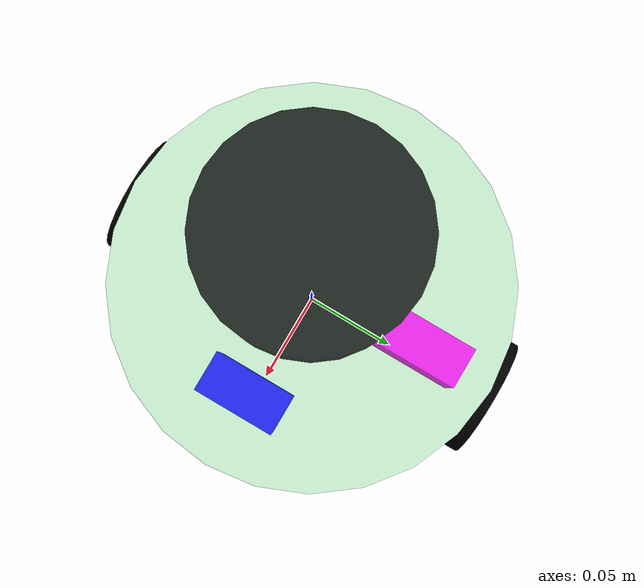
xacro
<!-- robot 根标签 -->
<robot name="car" xmlns:xacro="http://www.ros.org/wiki/xacro">
    <!-- 包含惯性矩阵 -->
    <xacro:include filename="$(find demo_gazebo_urdf)/urdf/head.urdf.xacro"/>
    <!-- 组合小车底盘、摄像头、深度相机、雷达 -->
    <xacro:include filename="$(find demo_gazebo_urdf)/urdf/carbase.urdf.xacro"/>
    <xacro:include filename="$(find demo_gazebo_urdf)/urdf/carcamera.urdf.xacro"/>
    <xacro:include filename="$(find demo_gazebo_urdf)/urdf/carkinectcamera.urdf.xacro"/>
    <xacro:include filename="$(find demo_gazebo_urdf)/urdf/carlaser.urdf.xacro"/>
    <!-- 为小车 joint 添加传动装置以及控制器 -->
    <xacro:include filename="$(find demo_gazebo_urdf)/urdf/gazebo/control.urdf.xacro"/>
    <!-- laser_sensor 配置信息 -->
    <xacro:include filename="$(find demo_gazebo_urdf)/urdf/gazebo/lasersensor.urdf.xacro"/>
    <!-- camera_sensor 配置信息 -->
    <xacro:include filename="$(find demo_gazebo_urdf)/urdf/gazebo/camerasensor.urdf.xacro"/>
    <!-- kinectcamera_sensor 配置信息 -->
    <xacro:include filename="$(find demo_gazebo_urdf)/urdf/gazebo/kinectcamerasensor.urdf.xacro"/>
</robot>

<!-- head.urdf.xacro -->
<robot name="base_inertial" xmlns:xacro="http://wiki.ros.org/xacro">
    <!-- Macro for inertia matrix -->
    <xacro:macro name="sphere_inertial_matrix" params="m r">
        <inertial>
            <mass value="${m}" />
            <inertia ixx="${2*m*r*r/5}" ixy="0" ixz="0"
                iyy="${2*m*r*r/5}" iyz="0"
                izz="${2*m*r*r/5}" />
        </inertial>
    </xacro:macro>

    <xacro:macro name="cylinder_inertial_matrix" params="m r h">
        <inertial>
            <mass value="${m}" />
            <inertia ixx="${m*(3*r*r+h*h)/12}" ixy = "0" ixz = "0"
                iyy="${m*(3*r*r+h*h)/12}" iyz = "0"
                izz="${m*r*r/2}" />
        </inertial>
    </xacro:macro>

    <xacro:macro name="Box_inertial_matrix" params="m l w h">
       <inertial>
               <mass value="${m}" />
               <inertia ixx="${m*(h*h + l*l)/12}" ixy = "0" ixz = "0"
                   iyy="${m*(w*w + l*l)/12}" iyz= "0"
                   izz="${m*(w*w + h*h)/12}" />
       </inertial>
   </xacro:macro>
</robot>

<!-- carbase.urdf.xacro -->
<!-- robot 根标签 -->
<robot name="carbase" xmlns:xacro="http://www.ros.org/wiki/xacro">
    <!-- 封装变量、常量 -->
    <xacro:property name="footprint_radius" value="0.001" />
    <xacro:property name="base_radius" value="0.1" />
    <xacro:property name="base_length" value="0.08" />
    <xacro:property name="distance_level" value="0.015" />
    <xacro:property name="base_mass" value="0.5" />
    <!-- 参考地平线 -->
    <link name="base_footprint">
        <visual>
            <origin xyz="0.0 0.0 0.0" rpy="0.0 0.0 0.0"/>
            <geometry>
                <sphere radius="${footprint_radius}"/>
            </geometry>
            <material name="footprint_color">
                <color rgba="1.0 0.0 0.0 1.0"/>
            </material>
        </visual>
    </link>
    <!-- 小车底盘 -->
    <link name="base_link">
        <!-- 外观可视化标签 -->
        <visual>
            <!-- 连杆的形状标签 -->
            <geometry>
                <!-- 盒状 -->
                <!-- 圆柱体 -->
                <cylinder radius="${base_radius}" length="${base_length}"/>
                <!-- 球体 -->
                <!-- 为连杆添加皮肤 -->
            </geometry>
            <!-- 偏移量(x,y,z)与倾斜弧度(r(翻滚)，p(俯仰)，y(偏航)) -->
            <origin xyz="0.0 0.0 0.0" rpy="0 0.0 0"/>
            <material name="car_color" >
                <color rgba="0.78 0.93 0.8 1.0"/>
            </material>
        </visual>
        <collision>
            <geometry>
                <!-- 圆柱体 -->
                <cylinder radius="${base_radius}" length="${base_length}"/>
            </geometry>
            <!-- 偏移量(x,y,z)与倾斜弧度(r(翻滚)，p(俯仰)，y(偏航)) -->
            <origin xyz="0.0 0.0 0.0" rpy="0 0.0 0"/>
        </collision>
        <!-- 调用惯性矩阵函数 -->
        <xacro:cylinder_inertial_matrix m="${base_mass}" r="${base_radius}" h="${base_length}" />
    </link>
    <gazebo reference="base_link">
        <material>
            Gazebo/Red
        </material>
    </gazebo>

    <!-- 底盘与参考地平面关节 -->
    <joint name="baselink2basefootprint" type="fixed">
        <origin xyz="0.0 0.0 ${distance_level + base_length / 2}" rpy="0.0 0.0 0.0"/>
        <parent link="base_footprint"/>
        <child link="base_link"/>
        <axis xyz="0.0 0.0 0.0"/>
    </joint>

    <!-- 驱动轮属性 -->
    <xacro:property name="PI" value="3.1415927" />
    <xacro:property name="wheel_radius" value="0.0325" />
    <xacro:property name="wheel_length" value="0.015" />
    <xacro:property name="wheel_mass" value="0.05" />
    <xacro:property name="wheel_distance" value="${-(distance_level + base_length / 2 - wheel_radius)}" />
    <!-- 驱动轮宏实现 -->
    <xacro:macro name="wheelfunc" params="name flag" >
        <link name="${name}_wheel">
            <!-- 外观可视化标签 -->
            <visual>
                <!-- 连杆的形状标签 -->
                <geometry>
                    <!-- 圆柱体 -->
                    <cylinder radius="${wheel_radius}" length="${wheel_length}"/>
                </geometry>
                <!-- 偏移量(x,y,z)与倾斜弧度(r(翻滚)，p(俯仰)，y(偏航)) -->
                <origin xyz="0.0 0.0 0.0" rpy="${PI / 2} 0.0 0.0"/>
                <material name="${name}_color" >
                    <color rgba="0 0 0 1"/>
                </material>
            </visual>
            <collision>
                <geometry>
                    <!-- 圆柱体 -->
                    <cylinder radius="${wheel_radius}" length="${wheel_length}"/>
                </geometry>
                <!-- 偏移量(x,y,z)与倾斜弧度(r(翻滚)，p(俯仰)，y(偏航)) -->
                <origin xyz="0.0 0.0 0.0" rpy="${PI / 2} 0.0 0.0"/>
            </collision>
            <xacro:cylinder_inertial_matrix m="${wheel_mass}" r="${wheel_radius}" h="${wheel_length}" />
        </link>
        <gazebo reference="${name}_wheel" >
            <material>
                Gazebo/Black
            </material>
        </gazebo>

        <!-- 轮关节 -->
        <joint name="${name}wheel2baselink" type="continuous">
            <origin xyz="0.0 ${base_radius * flag} ${wheel_distance}" rpy="0.0 0.0 0.0"/>
            <parent link="base_link"/>
            <child link="${name}_wheel"/>
            <axis xyz="0.0 1 0.0"/>
        </joint>
    </xacro:macro>
    <!-- 驱动轮宏调用 -->
    <xacro:wheelfunc name="left" flag="1" />
    <xacro:wheelfunc name="right" flag="-1" />

    <!-- 万向轮 -->
    <!-- 万向轮属性 -->
    <xacro:property name="support_wheel_radius" value="0.0075" />
    <xacro:property name="support_wheel_mass" value="0.03" />

    <!-- 万向轮宏 -->
    <xacro:macro name="supportwheelfunc" params="name flag" >
        <link name="${name}_wheel">
            <!-- 外观可视化标签 -->
            <visual>
                <!-- 连杆的形状标签 -->
                <geometry>
                    <!-- 球体 -->
                    <sphere radius="${support_wheel_radius}"/>
                </geometry>
                <!-- 偏移量(x,y,z)与倾斜弧度(r(翻滚)，p(俯仰)，y(偏航)) -->
                <origin xyz="0.0 0.0 0.0" rpy="0 0.0 0"/>
                <material name="${name}_color" >
                    <color rgba="0 0 0 1"/>
                </material>
            </visual>
            <collision>
                <geometry>
                    <!-- 球体 -->
                    <sphere radius="${support_wheel_radius}"/>
                </geometry>
                <!-- 偏移量(x,y,z)与倾斜弧度(r(翻滚)，p(俯仰)，y(偏航)) -->
                <origin xyz="0.0 0.0 0.0" rpy="0 0.0 0"/>
            </collision>
            <xacro:sphere_inertial_matrix m="${support_wheel_mass}" r="${support_wheel_radius}" />

        </link>
        <gazebo reference="${name}_wheel" >
            <material>
                Gazebo/Black
            </material>
        </gazebo>

        <!-- 轮关节 -->
        <joint name="${name}wheel2baselink" type="continuous">
            <origin xyz="${flag * (base_radius - support_wheel_radius)} 0.0 ${-(distance_level + base_length / 2 - support_wheel_radius)}" rpy="0.0 0.0 0.0"/>
            <parent link="base_link"/>
            <child link="${name}_wheel"/>
            <axis xyz="1 1 1"/>
        </joint>
    </xacro:macro>
    <!-- 万向轮宏调用 -->
    <xacro:supportwheelfunc name="front" flag="1" />
    <xacro:supportwheelfunc name="back" flag="-1" />

</robot>

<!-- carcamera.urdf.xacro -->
<!-- robot 根标签 -->
<robot name="carcamera" xmlns:xacro="http://www.ros.org/wiki/xacro">
    <!--  camera 组件-->
    <!-- camera属性 -->
    <xacro:property name="camera_length" value="0.02" />
    <xacro:property name="camera_width" value="0.04" />
    <xacro:property name="camera_hight" value="0.04" />
    <xacro:property name="camera_mass" value="0.02" />
    <xacro:property name="joint_camera_x" value="${base_radius - camera_width}" />
    <xacro:property name="joint_camera_y" value="0.0" />
    <xacro:property name="joint_camera_z" value="${base_length / 2 + camera_hight / 2}" />

    <!-- 摄像头link -->
    <link name="camera_link">
        <visual>
            <origin xyz="0.0 0.0 0.0" rpy="0.0 0.0 0.0"/>
            <geometry>
                <box size="${camera_length} ${camera_width} ${camera_hight}"/>
            </geometry>
            <material name="camera_color">
                <color rgba="0 0.0 1 0.8"/>
            </material>
        </visual>
        <collision>
            <origin xyz="0.0 0.0 0.0" rpy="0.0 0.0 0.0"/>
            <geometry>
                <box size="${camera_length} ${camera_width} ${camera_hight}"/>
            </geometry>
        </collision>
        <xacro:Box_inertial_matrix m="${camera_mass}" l="${camera_length}" w="${camera_width}" h="${camera_hight}" />

    </link>
    <gazebo reference="camera_link">
        <material>
            Gazebo/Blue
        </material>
    </gazebo>

    <!-- 摄像头joint -->
    <joint name="cameralink2baselink" type="fixed">
        <origin xyz="${joint_camera_x} ${joint_camera_y} ${joint_camera_z}" rpy="0.0 0.0 0.0"/>
        <parent link="base_link"/>
        <child link="camera_link"/>
        <axis xyz="0.0 0.0 0.0"/>
    </joint>
</robot>

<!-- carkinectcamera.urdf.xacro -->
<!-- robot 根标签 -->
<robot name="carkinectcamera" xmlns:xacro="http://www.ros.org/wiki/xacro">
    <!--  camera 组件-->
    <!-- camera属性 -->
    <xacro:property name="kinectcamera_length" value="0.02" />
    <xacro:property name="kinectcamera_width" value="0.04" />
    <xacro:property name="kinectcamera_hight" value="0.04" />
    <xacro:property name="kinectcamera_mass" value="0.02" />
    <xacro:property name="kinectjoint_camera_x" value="0.0" />
    <xacro:property name="kinectjoint_camera_y" value="${base_radius - kinectcamera_width}" />
    <xacro:property name="kinectjoint_camera_z" value="${base_length / 2 + kinectcamera_hight / 2}" />

    <!-- 摄像头link -->
    <link name="kinectcamera_link">
        <visual>
            <origin xyz="0.0 0.0 0.0" rpy="0.0 0.0 0.0"/>
            <geometry>
                <box size="${kinectcamera_length} ${kinectcamera_width} ${kinectcamera_hight}"/>
            </geometry>
            <material name="kinectcamera_color">
                <color rgba="1 0.0 1 0.8"/>
            </material>
        </visual>
        <collision>
            <origin xyz="0.0 0.0 0.0" rpy="0.0 0.0 0.0"/>
            <geometry>
                <box size="${kinectcamera_length} ${kinectcamera_width} ${kinectcamera_hight}"/>
            </geometry>
        </collision>
        <xacro:Box_inertial_matrix m="${kinectcamera_mass}" l="${kinectcamera_length}" w="${kinectcamera_width}" h="${kinectcamera_hight}" />

    </link>
    <gazebo reference="kinectcamera_link">
        <material>
            Gazebo/Green
        </material>
    </gazebo>

    <!-- 摄像头joint -->
    <joint name="kinectcameralink2baselink" type="fixed">
        <origin xyz="${kinectjoint_camera_x} ${kinectjoint_camera_y} ${kinectjoint_camera_z}" rpy="0.0 0.0 0.0"/>
        <parent link="base_link"/>
        <child link="kinectcamera_link"/>
        <axis xyz="0.0 0.0 0.0"/>
    </joint>
</robot>

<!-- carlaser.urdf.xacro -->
<!-- robot 根标签 -->
<robot name="carlaser" xmlns:xacro="http://www.ros.org/wiki/xacro">
    <!--  laser 组件-->
    <!-- support属性 -->
    <xacro:property name="support_laser_radius" value="0.02" />
    <xacro:property name="support_laser_length" value="0.15" />
    <xacro:property name="support_laser_mass" value="0.02" />
    <xacro:property name="support_laser_x" value="0.0" />
    <xacro:property name="support_laser_y" value="0.0" />
    <xacro:property name="support_laser_z" value="${support_laser_length / 2 + base_length / 2}" />
    <!-- 支架link -->
    <link name="support_laser_link">
        <visual name="">
            <origin xyz="0.0 0.0 0.0" rpy="0.0 0.0 0.0"/>
            <geometry>
                <cylinder radius="${support_laser_radius}" length="${support_laser_length}"/>
            </geometry>
            <material name="support_laser_color">
                <color rgba="0.8 0.2 0.0 0.8"/>
            </material>
        </visual>
        <collision>
            <origin xyz="0.0 0.0 0.0" rpy="0.0 0.0 0.0"/>
            <geometry>
                <cylinder radius="${support_laser_radius}" length="${support_laser_length}"/>
            </geometry>
        </collision>
        <xacro:cylinder_inertial_matrix m="${support_laser_mass}" r="${support_laser_radius}" h="${support_laser_length}" />

    </link>
    <gazebo reference="support_laser_link">
        <material>
            Gazebo/Yellow
        </material>
    </gazebo>

    <!-- 支架joint -->
    <joint name="supportlaser2baselink" type="fixed">
        <origin xyz="${support_laser_x} ${support_laser_y} ${support_laser_z}" rpy="0.0 0.0 0.0"/>
        <parent link="base_link"/>
        <child link="support_laser_link"/>
    </joint>
    <!-- laser属性 -->
    <xacro:property name="laser_radius" value="0.04" />
    <xacro:property name="laser_length" value="0.06" />
    <xacro:property name="laser_mass" value="0.05" />
    <xacro:property name="joint_laser_x" value="0.0" />
    <xacro:property name="joint_laser_y" value="0.0" />
    <xacro:property name="joint_laser_z" value="${laser_length / 2 + support_laser_length / 2}" />
    <!-- 雷达link -->
    <link name="laser_link">
        <visual>
            <origin xyz="0.0 0.0 0.0" rpy="0.0 0.0 0.0"/>
            <geometry>
                <cylinder radius="${laser_radius}" length="${laser_length}"/>
            </geometry>
            <material name="laser_color">
                <color rgba="0 0 0 0.8"/>
            </material>
        </visual>
        <collision>
            <origin xyz="0.0 0.0 0.0" rpy="0.0 0.0 0.0"/>
            <geometry>
                <cylinder radius="${laser_radius}" length="${laser_length}"/>
            </geometry>
        </collision>
        <xacro:cylinder_inertial_matrix m="${laser_mass}" r="${laser_radius}" h="${laser_length}" />

    </link>
    <gazebo reference="laser_link">
        <material>
            Gazebo/Black
        </material>
    </gazebo>

    <!-- 雷达joint -->
    <joint name="laserlink2supportlaser" type="fixed">
        <origin xyz="${joint_laser_x} ${joint_laser_y} ${joint_laser_z}" rpy="0.0 0.0 0.0"/>
        <parent link="support_laser_link"/>
        <child link="laser_link"/>
    </joint>
</robot>
